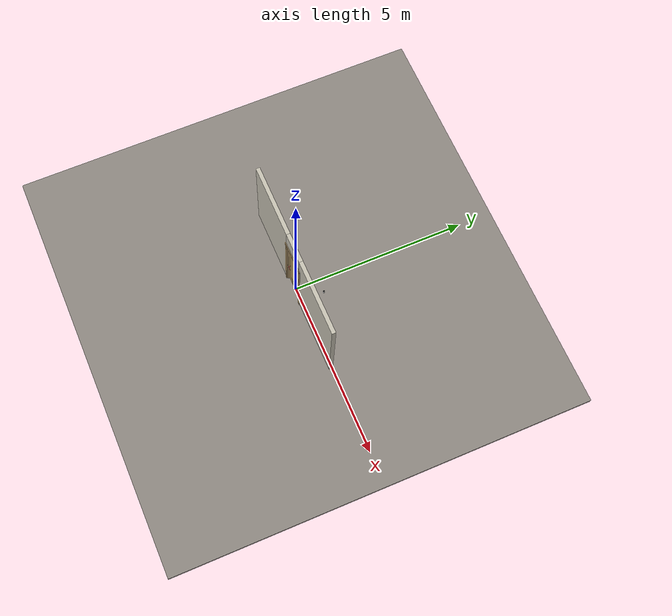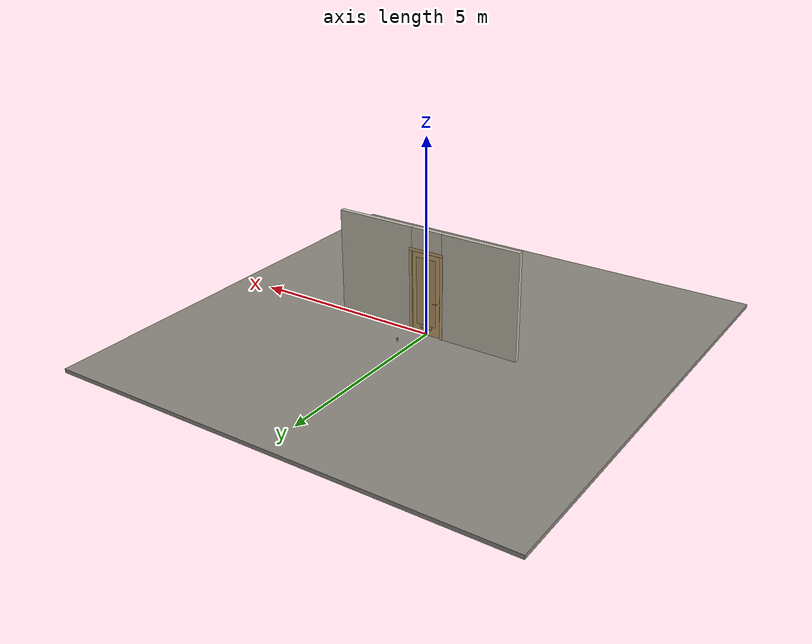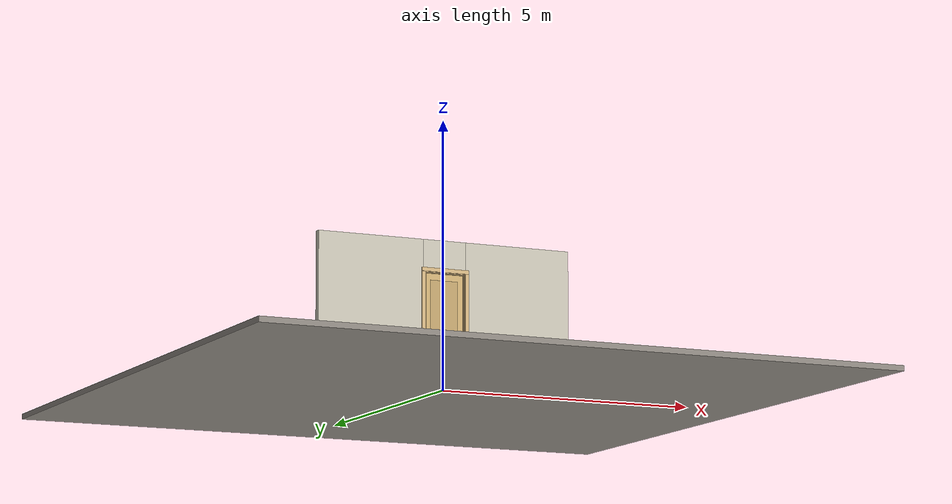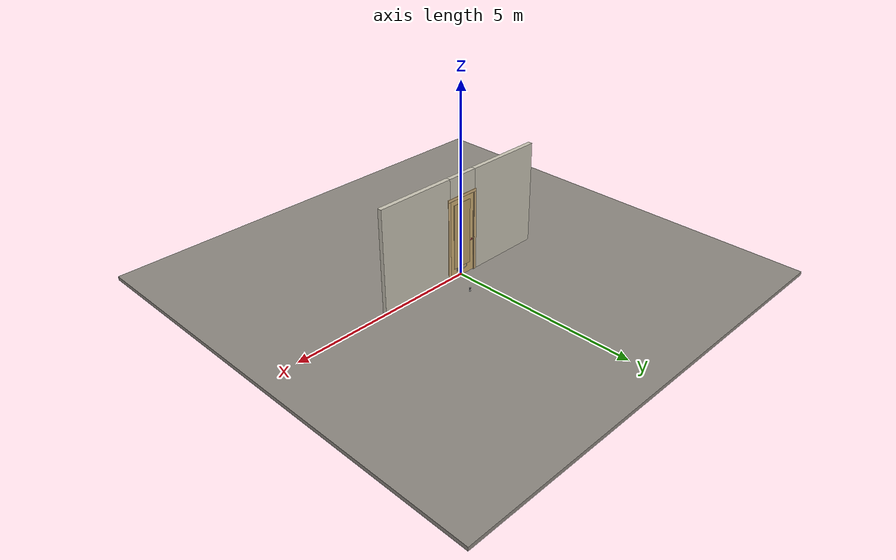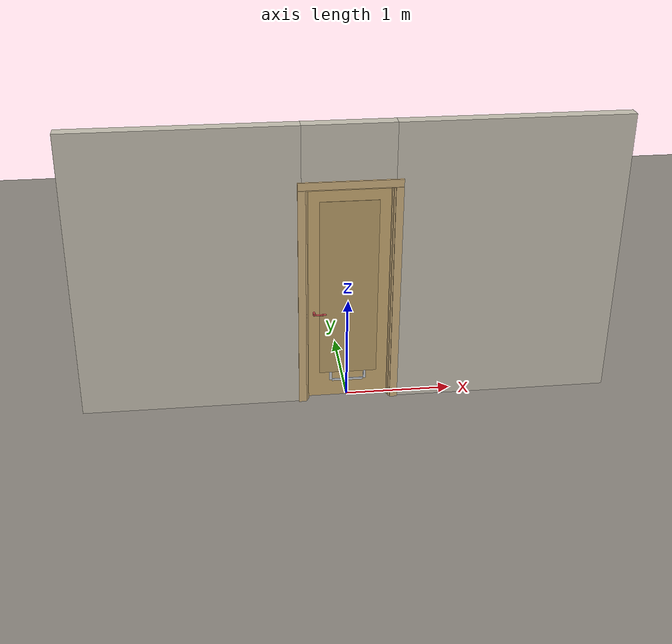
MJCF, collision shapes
<?xml version="1.0" ?>
<mujoco model="db0992_swing_single_full">
  <compiler angle="radian" meshdir="../../hardware" texturedir="../../textures" autolimits="true" inertiafromgeom="false"/>
  <option timestep="0.002" integrator="implicitfast" cone="elliptic" impratio="10" noslip_iterations="3">
    <flag multiccd="enable"/>
  </option>
  <size memory="16M"/>
  <default>
    <geom condim="4" solref="0.005 1" solimp="0.95 0.99 0.001"/>
    <joint solreflimit="0.005 1" solimplimit="0.95 0.99 0.001"/>
    <tendon solreflimit="0.005 1"/>
    <equality solref="0.002 1"/>
  </default>
  <visual>
    <headlight ambient="0.4 0.4 0.4" diffuse="0.7 0.7 0.7" specular="0.2 0.2 0.2"/>
    <quality shadowsize="4096"/>
    <map znear="0.01" zfar="60"/>
  </visual>
  <asset>
    <mesh name="hinge_2af0f4d6ca" file="hinge_2af0f4d6ca.obj"/>
    <mesh name="hinge_jamb_c0c0a62ada" file="hinge_jamb_c0c0a62ada.obj"/>
    <mesh name="lever_748f08efca" file="lever_748f08efca.obj"/>
    <material name="mat_floor" rgba="0.55 0.53 0.5 1" specular="0.2" shininess="0.15" reflectance="0"/>
    <material name="mat_wall" rgba="0.78 0.76 0.7 1" specular="0.2" shininess="0.1" reflectance="0"/>
    <material name="mat_leaf" rgba="0.8 0.68 0.45 1" specular="0.2" shininess="0.5" reflectance="0"/>
    <material name="mat_leaf_panel" rgba="0.736 0.626 0.414 1" specular="0.2" shininess="0.5" reflectance="0"/>
    <material name="mat_hinge" rgba="0.65 0.66 0.68 1" specular="0.74" shininess="0.5" reflectance="0.36"/>
    <material name="mat_op_chrome" rgba="0.9 0.9 0.92 1" specular="0.8" shininess="0.9" reflectance="0.4"/>
    <material name="mat_trim" rgba="0.85 0.66 0.3 1" specular="0.8" shininess="0.75" reflectance="0.4"/>
    <material name="mat_bolt" rgba="0.85 0.66 0.3 1" specular="0.8" shininess="0.75" reflectance="0.4"/>
    <material name="mat_frame" rgba="0.82 0.7 0.5 1" specular="0.2" shininess="0.45" reflectance="0"/>
    <material name="mat_vent" rgba="0.8 0.81 0.83 1" specular="0.8" shininess="0.6" reflectance="0.4"/>
    <material name="mat_bumper_stop" rgba="0.08 0.08 0.08 1" specular="0.2" shininess="0.1" reflectance="0"/>
    <material name="mat_stop_base" rgba="0.9 0.9 0.92 1" specular="0.8" shininess="0.9" reflectance="0.4"/>
    <texture name="skybox" type="skybox" builtin="gradient" rgb1="0.6 0.7 0.85" rgb2="0.9 0.92 0.95" width="256" height="256"/>
  </asset>
  <worldbody>
    <light name="sun" pos="1.5 -2.5 4" dir="-0.3 0.5 -0.8" directional="true" diffuse="0.8 0.8 0.8" specular="0.3 0.3 0.3" castshadow="true"/>
    <light name="fill" pos="-1.5 2.5 3" dir="0.3 -0.5 -0.7" directional="true" diffuse="0.35 0.35 0.4" castshadow="false"/>
    <camera name="robot_view" pos="0 -2.666313 1.812087" xyaxes="1 0 0 0 0.26963 0.962964" fovy="52"/>
    <camera name="far_view" pos="0 2.609312 1.812087" xyaxes="-1 0 0 0 -0.26963 0.962964" fovy="52"/>
    <camera name="iso" pos="-2.004737 -2.244263 2.234138" xyaxes="0.741536 -0.670913 0 0.242917 0.268487 0.932151" fovy="46"/>
    <camera name="detail_handle" pos="-0.0504 -0.877 1.194" xyaxes="0.97561 0.219512 0 -0.070934 0.315262 0.94635" fovy="38"/>
    <geom name="floor" type="box" size="6 6 0.05" pos="0 0 -0.05" material="mat_floor" group="0" contype="1" conaffinity="1" friction="0.8 0.005 0.0001" density="2400"/>
    <geom name="wall_left" type="box" size="1.033 0.0575 1.3735" pos="-1.467 -0.0285 1.3735" material="mat_wall" group="0" contype="1" conaffinity="1" friction="0.6 0.005 0.0001" density="800"/>
    <geom name="wall_right" type="box" size="1.048 0.0575 1.3735" pos="1.452 -0.0285 1.3735" material="mat_wall" group="0" contype="1" conaffinity="1" friction="0.6 0.005 0.0001" density="800"/>
    <geom name="wall_header" type="box" size="0.419 0.0575 0.2755" pos="-0.015 -0.0285 2.4715" material="mat_wall" group="0" contype="1" conaffinity="1" friction="0.6 0.005 0.0001" density="800"/>
    <geom name="hinge_0_jamb" type="mesh" mesh="hinge_jamb_c0c0a62ada" pos="0.382 0.029 0.259" quat="0 0 0 1" material="mat_hinge" group="1" contype="0" conaffinity="0" density="7850"/>
    <geom name="hinge_1_jamb" type="mesh" mesh="hinge_jamb_c0c0a62ada" pos="0.382 0.029 1.076" quat="0 0 0 1" material="mat_hinge" group="1" contype="0" conaffinity="0" density="7850"/>
    <geom name="hinge_2_jamb" type="mesh" mesh="hinge_jamb_c0c0a62ada" pos="0.382 0.029 1.963" quat="0 0 0 1" material="mat_hinge" group="1" contype="0" conaffinity="0" density="7850"/>
    <geom name="jamb_hinge" type="box" size="0.0095 0.0575 1.0735" pos="0.3945 -0.0285 1.0735" material="mat_frame" group="0" contype="1" conaffinity="1" friction="0.6 0.005 0.0001" density="400"/>
    <geom name="strike_914_wall_n" type="box" size="0.0245 0.039075 0.0167" pos="-0.4095 -0.046925 0.914" material="mat_frame" group="0" contype="1" conaffinity="1" friction="0.6 0.005 0.0001" density="400"/>
    <geom name="strike_914_wall_p" type="box" size="0.0245 0.008 0.0167" pos="-0.4095 0.01585 0.914" material="mat_frame" group="0" contype="1" conaffinity="1" friction="0.6 0.005 0.0001" density="400"/>
    <geom name="strike_914_ramp" type="box" size="0.0245 0.01649 0.0167" pos="-0.414136 0.028673 0.914" quat="0.977148 0 0 0.212558" material="mat_frame" group="0" contype="1" conaffinity="1" friction="0.12 0.005 0.0001" density="400"/>
    <geom name="strike_914_back" type="box" size="0.01615 0.00785 0.0167" pos="-0.41785 0 0.914" material="mat_frame" group="0" contype="1" conaffinity="1" friction="0.6 0.005 0.0001" density="400"/>
    <geom name="jamb_strike_0" type="box" size="0.0245 0.0575 0.44865" pos="-0.4095 -0.0285 0.44865" material="mat_frame" group="0" contype="1" conaffinity="1" friction="0.6 0.005 0.0001" density="400"/>
    <geom name="jamb_strike_1" type="box" size="0.0245 0.0575 0.60815" pos="-0.4095 -0.0285 1.53885" material="mat_frame" group="0" contype="1" conaffinity="1" friction="0.6 0.005 0.0001" density="400"/>
    <geom name="jamb_head" type="box" size="0.419 0.0575 0.0095" pos="-0.015 -0.0285 2.1565" material="mat_frame" group="0" contype="1" conaffinity="1" friction="0.6 0.005 0.0001" density="400"/>
    <geom name="head_stud" type="box" size="0.419 0.0575 0.015" pos="-0.015 -0.0285 2.181" material="mat_wall" group="0" contype="1" conaffinity="1" friction="0.6 0.005 0.0001" density="500"/>
    <geom name="stop_hinge" type="box" size="0.0055 0.016 1.0735" pos="0.3795 -0.0385 1.0735" material="mat_frame" group="0" contype="1" conaffinity="1" friction="0.6 0.005 0.0001" density="400"/>
    <geom name="stop_strike" type="box" size="0.0055 0.016 1.0735" pos="-0.3795 -0.0385 1.0735" material="mat_frame" group="0" contype="1" conaffinity="1" friction="0.6 0.005 0.0001" density="400"/>
    <geom name="stop_head" type="box" size="0.385 0.016 0.0055" pos="0 -0.0385 2.1415" material="mat_frame" group="0" contype="1" conaffinity="1" friction="0.6 0.005 0.0001" density="400"/>
    <geom name="casing_l_n" type="box" size="0.035 0.008 1.083" pos="-0.434 -0.094 1.0735" material="mat_frame" group="2" contype="0" conaffinity="0" density="400"/>
    <geom name="casing_r_n" type="box" size="0.035 0.008 1.083" pos="0.434 -0.094 1.0735" material="mat_frame" group="2" contype="0" conaffinity="0" density="400"/>
    <geom name="casing_h_n" type="box" size="0.469 0.008 0.035" pos="0 -0.094 2.196" material="mat_frame" group="2" contype="0" conaffinity="0" density="400"/>
    <geom name="casing_l_p" type="box" size="0.035 0.008 1.083" pos="-0.434 0.037 1.0735" material="mat_frame" group="2" contype="0" conaffinity="0" density="400"/>
    <geom name="casing_r_p" type="box" size="0.035 0.008 1.083" pos="0.434 0.037 1.0735" material="mat_frame" group="2" contype="0" conaffinity="0" density="400"/>
    <geom name="casing_h_p" type="box" size="0.469 0.008 0.035" pos="0 0.037 2.196" material="mat_frame" group="2" contype="0" conaffinity="0" density="400"/>
    <geom name="door_stop_base" type="cylinder" size="0.022 0.003" pos="0.398 0.6767 0.003" material="mat_stop_base" group="0" contype="1" conaffinity="1" friction="0.6 0.005 0.0001" density="7850"/>
    <geom name="door_stop_post" type="cylinder" size="0.012 0.0245" pos="0.398 0.6767 0.0305" material="mat_stop_base" group="0" contype="1" conaffinity="1" friction="0.6 0.005 0.0001" density="7850"/>
    <geom name="door_stop_bumper" type="cylinder" size="0.022 0.02" pos="0.398 0.6767 0.075" material="mat_bumper_stop" group="0" contype="1" conaffinity="1" friction="0.6 0.005 0.0001" density="1100"/>
    <site name="approach_point" pos="0 -1.5 0" quat="1 0 0 0" size="0.05" rgba="0.2 0.9 0.2 0.5" group="4"/>
    <site name="goal_point" pos="0 1.5 0" quat="1 0 0 0" size="0.05" rgba="0.2 0.9 0.2 0.5" group="4"/>
    <site name="door_plane_center" pos="0 0 1.0735" quat="1 0 0 0" size="0.02" rgba="0.2 0.9 0.2 0.5" group="4"/>
    <body name="leaf" pos="0.385 0 0">
      <inertial pos="-0.380679 0.000139 1.060934" mass="51.48491" quat="0.500166 0.499617 0.500376 -0.499841" diaginertia="2.508415044 19.795096056 22.286222537"/>
      <joint name="leaf_hinge" type="hinge" axis="0 0 -1" pos="-0.003 0.029 0" limited="true" range="0 1.570796" damping="0.179937" frictionloss="1.00283" armature="0.02"/>
      <geom name="leaf_slab" type="box" size="0.381 0.022 1.067" pos="-0.384 0 1.076" material="mat_leaf" group="0" contype="1" conaffinity="1" friction="0.35 0.005 0.0001" density="1"/>
      <geom name="leaf_panel_0_n" type="box" size="0.271 0.003 0.87628" pos="-0.384 -0.025 1.14002" material="mat_leaf_panel" group="1" contype="0" conaffinity="0" density="1"/>
      <geom name="leaf_panel_0_p" type="box" size="0.271 0.003 0.87628" pos="-0.384 0.025 1.14002" material="mat_leaf_panel" group="1" contype="0" conaffinity="0" density="1"/>
      <geom name="hinge_0" type="mesh" mesh="hinge_2af0f4d6ca" pos="-0.003 0.029 0.259" quat="0 0 0 1" material="mat_hinge" group="1" contype="0" conaffinity="0" density="7850"/>
      <geom name="hinge_1" type="mesh" mesh="hinge_2af0f4d6ca" pos="-0.003 0.029 1.076" quat="0 0 0 1" material="mat_hinge" group="1" contype="0" conaffinity="0" density="7850"/>
      <geom name="hinge_2" type="mesh" mesh="hinge_2af0f4d6ca" pos="-0.003 0.029 1.963" quat="0 0 0 1" material="mat_hinge" group="1" contype="0" conaffinity="0" density="7850"/>
      <geom name="leaf_latch_bolt_faceplate" type="box" size="0.0006 0.01235 0.0267" pos="-0.7644 0 0.914" material="mat_bolt" group="1" contype="0" conaffinity="0" density="8500"/>
      <geom name="louver_vent_stile_n_l" type="box" size="0.012 0.002 0.137" pos="-0.546 -0.024 0.314" material="mat_vent" group="2" contype="0" conaffinity="0" density="2700"/>
      <geom name="louver_vent_stile_n_r" type="box" size="0.012 0.002 0.137" pos="-0.222 -0.024 0.314" material="mat_vent" group="2" contype="0" conaffinity="0" density="2700"/>
      <geom name="louver_vent_rail_n_b" type="box" size="0.15 0.002 0.012" pos="-0.384 -0.024 0.177" material="mat_vent" group="2" contype="0" conaffinity="0" density="2700"/>
      <geom name="louver_vent_rail_n_t" type="box" size="0.15 0.002 0.012" pos="-0.384 -0.024 0.451" material="mat_vent" group="2" contype="0" conaffinity="0" density="2700"/>
      <geom name="louver_vent_stile_p_l" type="box" size="0.012 0.002 0.137" pos="-0.546 0.024 0.314" material="mat_vent" group="2" contype="0" conaffinity="0" density="2700"/>
      <geom name="louver_vent_stile_p_r" type="box" size="0.012 0.002 0.137" pos="-0.222 0.024 0.314" material="mat_vent" group="2" contype="0" conaffinity="0" density="2700"/>
      <geom name="louver_vent_rail_p_b" type="box" size="0.15 0.002 0.012" pos="-0.384 0.024 0.177" material="mat_vent" group="2" contype="0" conaffinity="0" density="2700"/>
      <geom name="louver_vent_rail_p_t" type="box" size="0.15 0.002 0.012" pos="-0.384 0.024 0.451" material="mat_vent" group="2" contype="0" conaffinity="0" density="2700"/>
      <geom name="louver_vent_slat_0" type="box" size="0.15 0.0015 0.015" pos="-0.384 0 0.209833" quat="0.965926 -0.258819 0 0" material="mat_vent" group="2" contype="0" conaffinity="0" density="2700"/>
      <geom name="louver_vent_slat_1" type="box" size="0.15 0.0015 0.015" pos="-0.384 0 0.2515" quat="0.965926 -0.258819 0 0" material="mat_vent" group="2" contype="0" conaffinity="0" density="2700"/>
      <geom name="louver_vent_slat_2" type="box" size="0.15 0.0015 0.015" pos="-0.384 0 0.293167" quat="0.965926 -0.258819 0 0" material="mat_vent" group="2" contype="0" conaffinity="0" density="2700"/>
      <geom name="louver_vent_slat_3" type="box" size="0.15 0.0015 0.015" pos="-0.384 0 0.334833" quat="0.965926 -0.258819 0 0" material="mat_vent" group="2" contype="0" conaffinity="0" density="2700"/>
      <geom name="louver_vent_slat_4" type="box" size="0.15 0.0015 0.015" pos="-0.384 0 0.3765" quat="0.965926 -0.258819 0 0" material="mat_vent" group="2" contype="0" conaffinity="0" density="2700"/>
      <geom name="louver_vent_slat_5" type="box" size="0.15 0.0015 0.015" pos="-0.384 0 0.418167" quat="0.965926 -0.258819 0 0" material="mat_vent" group="2" contype="0" conaffinity="0" density="2700"/>
      <site name="leaf_edge_mid" pos="-0.765 0 1.067" quat="1 0 0 0" size="0.02" rgba="0.2 0.9 0.2 0.5" group="4"/>
      <body name="leaf_handle" pos="-0.705 0 0.914">
        <inertial pos="0.024187 0 0" mass="0.847798" quat="0.707107 0 0 -0.707107" diaginertia="0.00118733 0.003222067 0.004272567"/>
        <joint name="leaf_handle_hinge" type="hinge" axis="0 1 0" limited="true" range="0 0.87" damping="0.205085" frictionloss="0.04" stiffness="0.9" springref="-0.444444" armature="0.01"/>
        <geom name="leaf_handle_spindle" type="cylinder" size="0.006 0.03" pos="0 0 0" quat="0.707107 -0.707107 0 0" material="mat_op_chrome" group="1" contype="0" conaffinity="0" density="7850"/>
        <geom name="leaf_handle_lever_n" type="mesh" mesh="lever_748f08efca" pos="0 -0.022 0" quat="0 0 -0.707107 0.707107" material="mat_op_chrome" group="1" contype="0" conaffinity="0" density="3000"/>
        <geom name="leaf_handle_lever_col_n" type="capsule" size="0.008 0.048" pos="0.056 -0.077 0" quat="0.707107 0 0.707107 0" material="mat_op_chrome" group="3" contype="1" conaffinity="1" rgba="0.8 0.3 0.3 0.25" friction="0.7 0.01 0.0001" density="3000"/>
        <geom name="leaf_handle_hub_col_n" type="cylinder" size="0.012 0.022" pos="0 -0.052 0" quat="0.707107 -0.707107 0 0" material="mat_op_chrome" group="3" contype="1" conaffinity="1" rgba="0.8 0.3 0.3 0.25" friction="0.6 0.005 0.0001" density="3000"/>
        <geom name="leaf_handle_lever_p" type="mesh" mesh="lever_748f08efca" pos="0 0.022 0" quat="0 0 0.707107 0.707107" material="mat_op_chrome" group="1" contype="0" conaffinity="0" density="3000"/>
        <geom name="leaf_handle_lever_col_p" type="capsule" size="0.008 0.048" pos="0.056 0.077 0" quat="0.707107 0 0.707107 0" material="mat_op_chrome" group="3" contype="1" conaffinity="1" rgba="0.8 0.3 0.3 0.25" friction="0.7 0.01 0.0001" density="3000"/>
        <geom name="leaf_handle_hub_col_p" type="cylinder" size="0.012 0.022" pos="0 0.052 0" quat="0.707107 -0.707107 0 0" material="mat_op_chrome" group="3" contype="1" conaffinity="1" rgba="0.8 0.3 0.3 0.25" friction="0.6 0.005 0.0001" density="3000"/>
        <site name="leaf_handle_grip_n" pos="0.0896 -0.077 0" quat="1 0 0 0" size="0.012" rgba="0.2 0.9 0.2 0.5" group="4"/>
        <site name="leaf_handle_grip_p" pos="0.0896 0.077 0" quat="1 0 0 0" size="0.012" rgba="0.2 0.9 0.2 0.5" group="4"/>
      </body>
      <body name="leaf_latch_bolt" pos="-0.765 0 0.914">
        <inertial pos="0.00865 0 0" mass="0.041419" quat="0.92388 0.382683 0 0" diaginertia="0.000000798 0.000005598 0.000005598"/>
        <joint name="leaf_latch_bolt_slide" type="slide" axis="1 0 0" limited="true" range="0 0.0127" damping="2" frictionloss="0.3" stiffness="300" springref="-0.008333" armature="0.1"/>
        <geom name="leaf_latch_bolt_capsule" type="capsule" size="0.00635 0.015" pos="0.00865 0 0" quat="0.707107 0 -0.707107 0" material="mat_bolt" group="0" contype="1" conaffinity="1" friction="0.2 0.005 0.0001" density="8500"/>
      </body>
    </body>
  </worldbody>
  <tendon>
    <fixed name="leaf_latch_bolt_coupling" limited="true" range="0 10">
      <joint joint="leaf_latch_bolt_slide" coef="1"/>
      <joint joint="leaf_handle_hinge" coef="-0.016076"/>
    </fixed>
  </tendon>
  <sensor>
    <jointpos name="leaf_hinge_pos" joint="leaf_hinge"/>
    <jointvel name="leaf_hinge_vel" joint="leaf_hinge"/>
    <jointpos name="leaf_handle_hinge_pos" joint="leaf_handle_hinge"/>
    <jointvel name="leaf_handle_hinge_vel" joint="leaf_handle_hinge"/>
    <jointpos name="leaf_latch_bolt_slide_pos" joint="leaf_latch_bolt_slide"/>
    <jointvel name="leaf_latch_bolt_slide_vel" joint="leaf_latch_bolt_slide"/>
  </sensor>
</mujoco>
